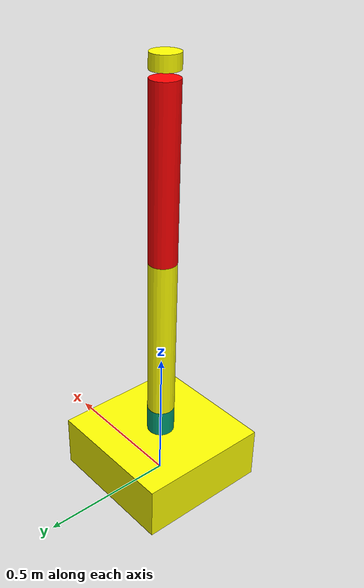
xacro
<?xml version="1.0"?>
<robot name="arm" xmlns:xacro="http://www.ros.org/wiki/xacro">

    <!-- Common Parameters -->
    <xacro:property name="base_length" value="0.1" />
    <xacro:property name="length" value="0.6" />
    <xacro:property name="radius" value="0.05" />
    <xacro:property name="lower_limit" value="-1.573" />
    <xacro:property name="upper_limit" value="0.0" />
    <xacro:property name="mass" value="1.0" />
    <xacro:property name="effort" value="1.0" />
    <xacro:property name="velocity" value="1.0" />

    <!-- Material Definitions -->
    <xacro:macro name="material" params="name color">
        <material name="${name}">
            <color rgba="${color}" />
        </material>
    </xacro:macro>

    <xacro:material name="red" color="1.0 0.0 0.0 1.0" />
    <xacro:material name="yellow" color="1.0 1.0 0.0 1.0" />

    <!-- Base -->
    <link name="robot_footprint" />

    <link name="base">
        <inertial>
            <origin xyz="0.0 0.0 0.0" rpy="0.0 0.0 0.0" />
            <mass value="1.0" />
            <inertia ixx="0.02147" ixy="0.0" ixz="0.0" iyy="0.02147" iyz="0.0" izz="0.04167" />
        </inertial>
        <visual>
            <origin xyz="0.0 0.0 0.0" rpy="0.0 0.0 0.0" />
            <geometry>
                <box size="0.50 0.50 0.20" />
            </geometry>
            <material name="yellow" />
        </visual>
        <collision>
            <origin xyz="0.0 0.0 0.0" rpy="0.0 0.0 0.0" />
            <geometry>
                <box size="0.50 0.50 0.20" />
            </geometry>
        </collision>
    </link>

    <joint name="robot_footprint_base" type="fixed">
        <origin xyz="0.0 0.0 0.1" rpy="0.0 0.0 0.0" />
        <parent link="robot_footprint" />
        <child link="base" />
    </joint>

    <!-- Base Link -->
    <link name="base_link">
        <visual>
            <geometry>
                <cylinder radius="${radius}" length="${base_length}" />
            </geometry>
            <origin xyz="0.0 0.0 0.0" rpy="0.0 0.0 0.0" />
        </visual>
        <collision>
            <geometry>
                <cylinder radius="${radius}" length="${base_length}" />
            </geometry>
            <origin xyz="0.0 0.0 0.0" rpy="0.0 0.0 0.0" />
        </collision>
    </link>

    <joint name="base_to_base_link" type="continuous">
        <parent link="base" />
        <child link="base_link" />
        <origin xyz="0 0 0.15" rpy="0 0 0" />
        <axis xyz="0.0 0.0 1.0" />
    </joint>

    <!-- Extension Macro -->
    <xacro:macro name="extension" params="parent child material extended_length">
        <link name="${child}">
            <inertial>
                <origin xyz="0.0 0.0 0.0" rpy="0.0 0.0 0.0" />
                <mass value="${mass}" />
                <inertia ixx="0.1" ixy="0.0" ixz="0.0" iyy="0.1" iyz="0.0" izz="0.1" />
            </inertial>
            <visual>
                <origin xyz="0.0 0.0 0.25" rpy="0.0 0.0 0.0" />
                <geometry>
                    <cylinder radius="${radius}" length="${length}" />
                </geometry>
                <material name="${material}" />
            </visual>
            <collision>
                <origin xyz="0.45 0.0 0.0" rpy="0.0 0.0 0.0" />
                <geometry>
                    <cylinder radius="${radius}" length="${length}" />
                </geometry>
            </collision>
        </link>

        <joint name="${parent}_to_${child}_joint" type="revolute">
            <origin xyz="0.0 0.0 ${extended_length}" rpy="0.0 0.0 0.0" />
            <parent link="${parent}" />
            <child link="${child}" />
            <axis xyz="0.0 1.0 0.0" />
            <limit lower="${lower_limit}" upper="${upper_limit}" effort="${effort}"
                velocity="${velocity}" />
        </joint>
    </xacro:macro>

    <!-- Robot Arm Links and Joints -->
    <xacro:extension child="shoulder" parent="base_link" material="yellow"
        extended_length="${base_length}" />
    <xacro:extension child="elbow" parent="shoulder" material="red" extended_length="${length}" />

    <!-- Wrist -->
    <link name="wrist">
        <inertial>
            <origin xyz="0.0 0.0 0.0" rpy="0.0 0.0 0.0" />
            <mass value="0.5" />
            <inertia ixx="0.0" ixy="0.0" ixz="0.0" iyy="0.0" iyz="0.0" izz="0.0" />
        </inertial>
        <visual>
            <origin xyz="0.0 0.0 0.0" rpy="0.0 0.0 0.0" />
            <geometry>
                <cylinder radius="${radius}" length="0.05" />
            </geometry>
            <material name="yellow" />
        </visual>
        <collision>
            <origin xyz="0.0 0.0 0.0" rpy="0.0 0.0 0.0" />
            <geometry>
                <box size="0.05 0.05 0.05" />
            </geometry>
        </collision>
    </link>

    <joint name="wrist_to_elbow" type="revolute">
        <origin xyz="0.0 0.0 ${length}" rpy="0.0 0.0 0.0" />
        <parent link="elbow" />
        <child link="wrist" />
        <axis xyz="0.0 0.0 1.0" />
        <limit lower="-1.573" upper="1.573" effort="1.0" velocity="0.01" />
    </joint>

</robot>
